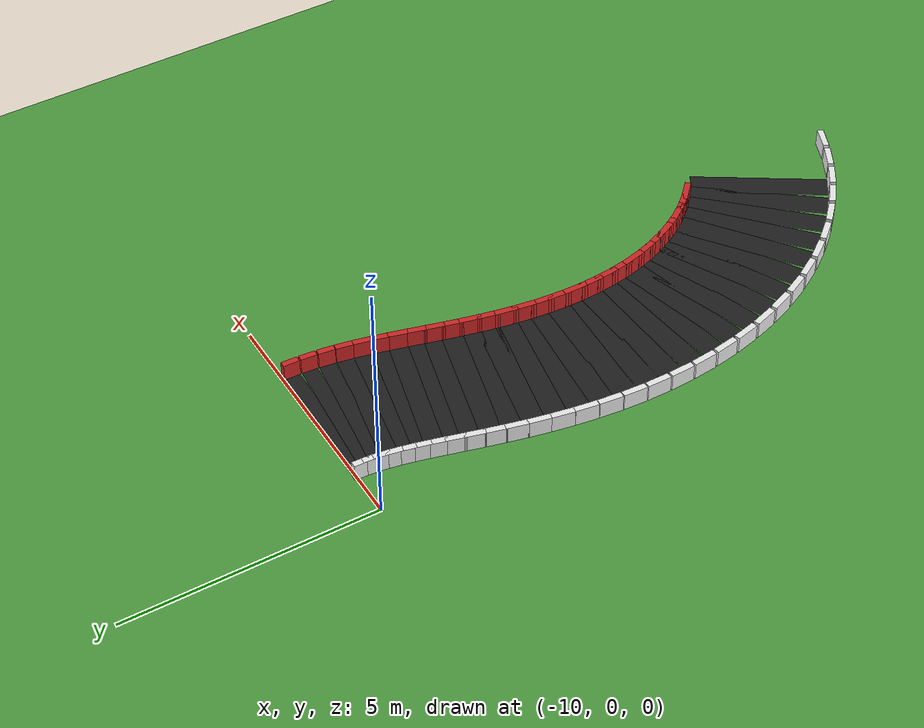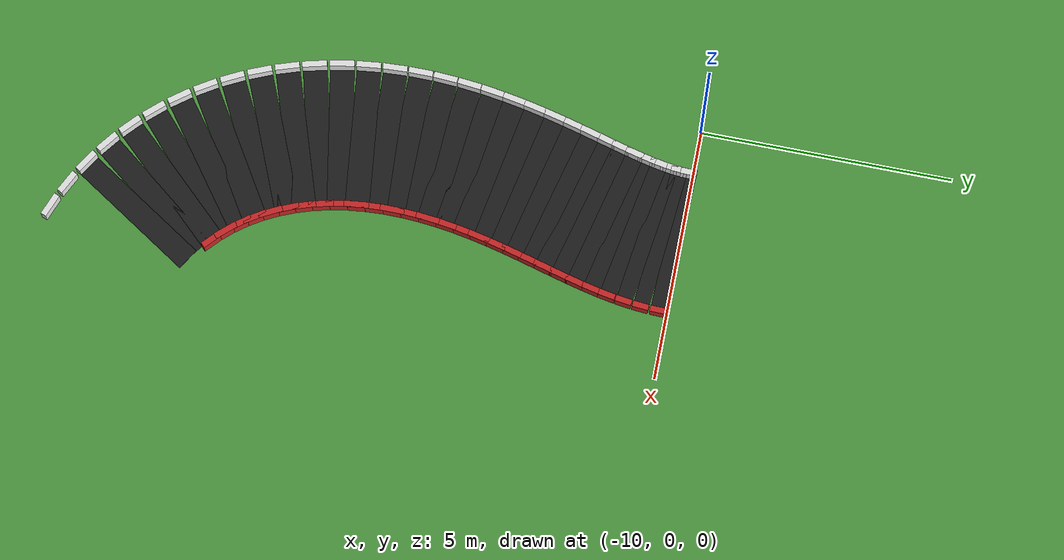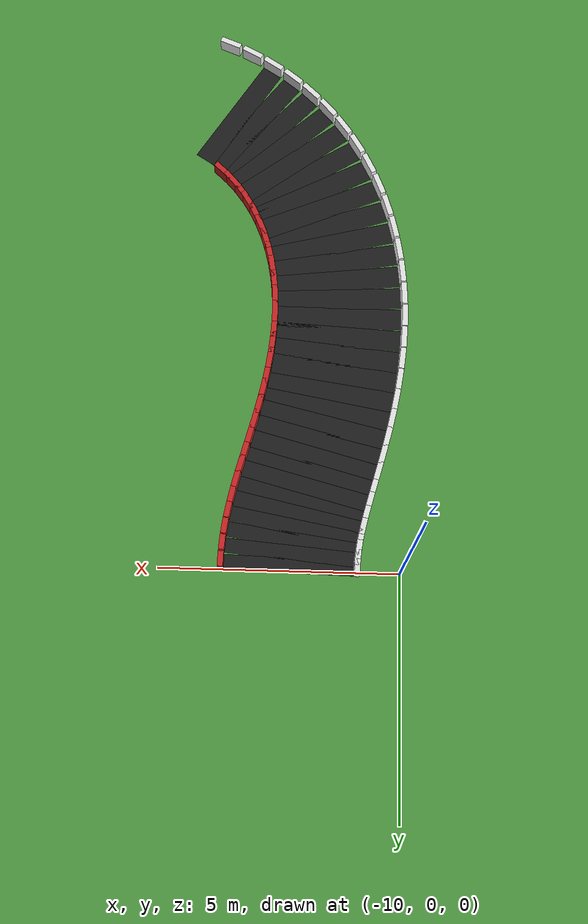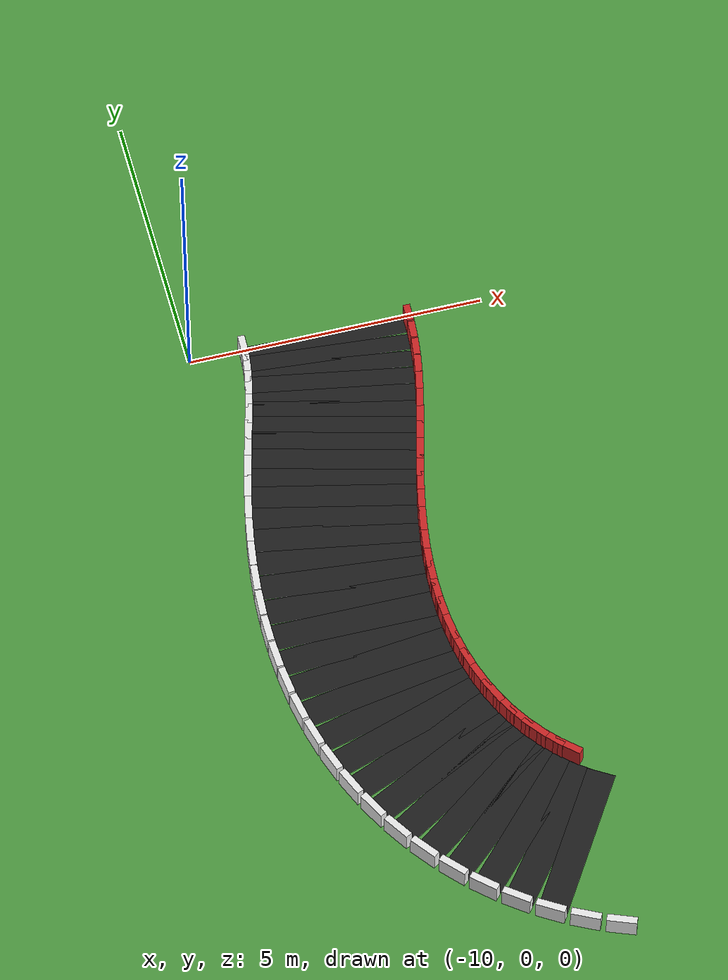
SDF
<sdf version="1.7">
 <world name="rl_track">
  <include><uri>model://sun</uri></include>
  <model name="ground">
   <static>true</static>
   <link name="link">
    <collision name="collision">
     <geometry><plane><normal>0 0 1</normal><size>40 40</size></plane></geometry>
    </collision>
    <visual name="visual">
     <geometry><plane><normal>0 0 1</normal><size>40 40</size></plane></geometry>
     <material>
      <script><uri>file://media/materials/scripts/gazebo.material</uri><name>Gazebo/Grass</name></script>
     </material>
    </visual>
   </link>
  </model>
  <model name="track">
   <static>true</static>
   <link name="road_090">
    <pose>-7.703951 -0.134583 0.003000 0 0 -1.600142788</pose>
    <visual name="visual">
     <geometry><box><size>0.309282 2.700000 0.006000</size></box></geometry>
     <material>
      <script><uri>file://media/materials/scripts/gazebo.material</uri><name>Gazebo/Black</name></script>
     </material>
    </visual>
   </link>
   <link name="inner_wall_090">
    <pose>-9.113344 -0.093210 0.175000 0 0 -1.600142788</pose>
    <collision name="collision">
     <geometry><box><size>0.319282 0.120000 0.350000</size></box></geometry>
     <surface><contact><ode><kp>1000000</kp><kd>10</kd></ode></contact></surface>
    </collision>
    <visual name="visual">
     <geometry><box><size>0.319282 0.120000 0.350000</size></box></geometry>
     <material>
      <script><uri>file://media/materials/scripts/gazebo.material</uri><name>Gazebo/White</name></script>
     </material>
    </visual>
   </link>
   <link name="outer_wall_090">
    <pose>-6.294558 -0.175955 0.175000 0 0 -1.600142788</pose>
    <collision name="collision">
     <geometry><box><size>0.319282 0.120000 0.350000</size></box></geometry>
     <surface><contact><ode><kp>1000000</kp><kd>10</kd></ode></contact></surface>
    </collision>
    <visual name="visual">
     <geometry><box><size>0.319282 0.120000 0.350000</size></box></geometry>
     <material>
      <script><uri>file://media/materials/scripts/gazebo.material</uri><name>Gazebo/Red</name></script>
     </material>
    </visual>
   </link>
   <link name="road_091">
    <pose>-7.719641 -0.404898 0.003000 0 0 -1.657075034</pose>
    <visual name="visual">
     <geometry><box><size>0.312479 2.700000 0.006000</size></box></geometry>
     <material>
      <script><uri>file://media/materials/scripts/gazebo.material</uri><name>Gazebo/Black</name></script>
     </material>
    </visual>
   </link>
   <link name="inner_wall_091">
    <pose>-9.124397 -0.283396 0.175000 0 0 -1.657075034</pose>
    <collision name="collision">
     <geometry><box><size>0.322479 0.120000 0.350000</size></box></geometry>
     <surface><contact><ode><kp>1000000</kp><kd>10</kd></ode></contact></surface>
    </collision>
    <visual name="visual">
     <geometry><box><size>0.322479 0.120000 0.350000</size></box></geometry>
     <material>
      <script><uri>file://media/materials/scripts/gazebo.material</uri><name>Gazebo/White</name></script>
     </material>
    </visual>
   </link>
   <link name="outer_wall_091">
    <pose>-6.314886 -0.526400 0.175000 0 0 -1.657075034</pose>
    <collision name="collision">
     <geometry><box><size>0.322479 0.120000 0.350000</size></box></geometry>
     <surface><contact><ode><kp>1000000</kp><kd>10</kd></ode></contact></surface>
    </collision>
    <visual name="visual">
     <geometry><box><size>0.322479 0.120000 0.350000</size></box></geometry>
     <material>
      <script><uri>file://media/materials/scripts/gazebo.material</uri><name>Gazebo/Red</name></script>
     </material>
    </visual>
   </link>
   <link name="road_092">
    <pose>-7.750577 -0.678633 0.003000 0 0 -1.709003613</pose>
    <visual name="visual">
     <geometry><box><size>0.318662 2.700000 0.006000</size></box></geometry>
     <material>
      <script><uri>file://media/materials/scripts/gazebo.material</uri><name>Gazebo/Black</name></script>
     </material>
    </visual>
   </link>
   <link name="inner_wall_092">
    <pose>-9.147132 -0.484381 0.175000 0 0 -1.709003613</pose>
    <collision name="collision">
     <geometry><box><size>0.328662 0.120000 0.350000</size></box></geometry>
     <surface><contact><ode><kp>1000000</kp><kd>10</kd></ode></contact></surface>
    </collision>
    <visual name="visual">
     <geometry><box><size>0.328662 0.120000 0.350000</size></box></geometry>
     <material>
      <script><uri>file://media/materials/scripts/gazebo.material</uri><name>Gazebo/White</name></script>
     </material>
    </visual>
   </link>
   <link name="outer_wall_092">
    <pose>-6.354022 -0.872886 0.175000 0 0 -1.709003613</pose>
    <collision name="collision">
     <geometry><box><size>0.328662 0.120000 0.350000</size></box></geometry>
     <surface><contact><ode><kp>1000000</kp><kd>10</kd></ode></contact></surface>
    </collision>
    <visual name="visual">
     <geometry><box><size>0.328662 0.120000 0.350000</size></box></geometry>
     <material>
      <script><uri>file://media/materials/scripts/gazebo.material</uri><name>Gazebo/Red</name></script>
     </material>
    </visual>
   </link>
   <link name="road_093">
    <pose>-7.795873 -0.957971 0.003000 0 0 -1.753414670</pose>
    <visual name="visual">
     <geometry><box><size>0.327451 2.700000 0.006000</size></box></geometry>
     <material>
      <script><uri>file://media/materials/scripts/gazebo.material</uri><name>Gazebo/Black</name></script>
     </material>
    </visual>
   </link>
   <link name="inner_wall_093">
    <pose>-9.182427 -0.701908 0.175000 0 0 -1.753414670</pose>
    <collision name="collision">
     <geometry><box><size>0.337451 0.120000 0.350000</size></box></geometry>
     <surface><contact><ode><kp>1000000</kp><kd>10</kd></ode></contact></surface>
    </collision>
    <visual name="visual">
     <geometry><box><size>0.337451 0.120000 0.350000</size></box></geometry>
     <material>
      <script><uri>file://media/materials/scripts/gazebo.material</uri><name>Gazebo/White</name></script>
     </material>
    </visual>
   </link>
   <link name="outer_wall_093">
    <pose>-6.409319 -1.214034 0.175000 0 0 -1.753414670</pose>
    <collision name="collision">
     <geometry><box><size>0.337451 0.120000 0.350000</size></box></geometry>
     <surface><contact><ode><kp>1000000</kp><kd>10</kd></ode></contact></surface>
    </collision>
    <visual name="visual">
     <geometry><box><size>0.337451 0.120000 0.350000</size></box></geometry>
     <material>
      <script><uri>file://media/materials/scripts/gazebo.material</uri><name>Gazebo/Red</name></script>
     </material>
    </visual>
   </link>
   <link name="road_094">
    <pose>-7.854227 -1.244953 0.003000 0 0 -1.788725289</pose>
    <visual name="visual">
     <geometry><box><size>0.338349 2.700000 0.006000</size></box></geometry>
     <material>
      <script><uri>file://media/materials/scripts/gazebo.material</uri><name>Gazebo/Black</name></script>
     </material>
    </visual>
   </link>
   <link name="inner_wall_094">
    <pose>-9.230877 -0.940100 0.175000 0 0 -1.788725289</pose>
    <collision name="collision">
     <geometry><box><size>0.348349 0.120000 0.350000</size></box></geometry>
     <surface><contact><ode><kp>1000000</kp><kd>10</kd></ode></contact></surface>
    </collision>
    <visual name="visual">
     <geometry><box><size>0.348349 0.120000 0.350000</size></box></geometry>
     <material>
      <script><uri>file://media/materials/scripts/gazebo.material</uri><name>Gazebo/White</name></script>
     </material>
    </visual>
   </link>
   <link name="outer_wall_094">
    <pose>-6.477577 -1.549806 0.175000 0 0 -1.788725289</pose>
    <collision name="collision">
     <geometry><box><size>0.348349 0.120000 0.350000</size></box></geometry>
     <surface><contact><ode><kp>1000000</kp><kd>10</kd></ode></contact></surface>
    </collision>
    <visual name="visual">
     <geometry><box><size>0.348349 0.120000 0.350000</size></box></geometry>
     <material>
      <script><uri>file://media/materials/scripts/gazebo.material</uri><name>Gazebo/Red</name></script>
     </material>
    </visual>
   </link>
   <link name="road_095">
    <pose>-7.923939 -1.541423 0.003000 0 0 -1.814234779</pose>
    <visual name="visual">
     <geometry><box><size>0.350813 2.700000 0.006000</size></box></geometry>
     <material>
      <script><uri>file://media/materials/scripts/gazebo.material</uri><name>Gazebo/Black</name></script>
     </material>
    </visual>
   </link>
   <link name="inner_wall_095">
    <pose>-9.292365 -1.201555 0.175000 0 0 -1.814234779</pose>
    <collision name="collision">
     <geometry><box><size>0.360813 0.120000 0.350000</size></box></geometry>
     <surface><contact><ode><kp>1000000</kp><kd>10</kd></ode></contact></surface>
    </collision>
    <visual name="visual">
     <geometry><box><size>0.360813 0.120000 0.350000</size></box></geometry>
     <material>
      <script><uri>file://media/materials/scripts/gazebo.material</uri><name>Gazebo/White</name></script>
     </material>
    </visual>
   </link>
   <link name="outer_wall_095">
    <pose>-6.555513 -1.881291 0.175000 0 0 -1.814234779</pose>
    <collision name="collision">
     <geometry><box><size>0.360813 0.120000 0.350000</size></box></geometry>
     <surface><contact><ode><kp>1000000</kp><kd>10</kd></ode></contact></surface>
    </collision>
    <visual name="visual">
     <geometry><box><size>0.360813 0.120000 0.350000</size></box></geometry>
     <material>
      <script><uri>file://media/materials/scripts/gazebo.material</uri><name>Gazebo/Red</name></script>
     </material>
    </visual>
   </link>
   <link name="road_096">
    <pose>-8.002947 -1.848983 0.003000 0 0 -1.829923918</pose>
    <visual name="visual">
     <geometry><box><size>0.364298 2.700000 0.006000</size></box></geometry>
     <material>
      <script><uri>file://media/materials/scripts/gazebo.material</uri><name>Gazebo/Black</name></script>
     </material>
    </visual>
   </link>
   <link name="inner_wall_096">
    <pose>-9.365873 -1.487688 0.175000 0 0 -1.829923918</pose>
    <collision name="collision">
     <geometry><box><size>0.374298 0.120000 0.350000</size></box></geometry>
     <surface><contact><ode><kp>1000000</kp><kd>10</kd></ode></contact></surface>
    </collision>
    <visual name="visual">
     <geometry><box><size>0.374298 0.120000 0.350000</size></box></geometry>
     <material>
      <script><uri>file://media/materials/scripts/gazebo.material</uri><name>Gazebo/White</name></script>
     </material>
    </visual>
   </link>
   <link name="outer_wall_096">
    <pose>-6.640022 -2.210277 0.175000 0 0 -1.829923918</pose>
    <collision name="collision">
     <geometry><box><size>0.374298 0.120000 0.350000</size></box></geometry>
     <surface><contact><ode><kp>1000000</kp><kd>10</kd></ode></contact></surface>
    </collision>
    <visual name="visual">
     <geometry><box><size>0.374298 0.120000 0.350000</size></box></geometry>
     <material>
      <script><uri>file://media/materials/scripts/gazebo.material</uri><name>Gazebo/Red</name></script>
     </material>
    </visual>
   </link>
   <link name="road_097">
    <pose>-8.088865 -2.168943 0.003000 0 0 -1.836214078</pose>
    <visual name="visual">
     <geometry><box><size>0.378296 2.700000 0.006000</size></box></geometry>
     <material>
      <script><uri>file://media/materials/scripts/gazebo.material</uri><name>Gazebo/Black</name></script>
     </material>
    </visual>
   </link>
   <link name="inner_wall_097">
    <pose>-9.449491 -1.799082 0.175000 0 0 -1.836214078</pose>
    <collision name="collision">
     <geometry><box><size>0.388296 0.120000 0.350000</size></box></geometry>
     <surface><contact><ode><kp>1000000</kp><kd>10</kd></ode></contact></surface>
    </collision>
    <visual name="visual">
     <geometry><box><size>0.388296 0.120000 0.350000</size></box></geometry>
     <material>
      <script><uri>file://media/materials/scripts/gazebo.material</uri><name>Gazebo/White</name></script>
     </material>
    </visual>
   </link>
   <link name="outer_wall_097">
    <pose>-6.728239 -2.538803 0.175000 0 0 -1.836214078</pose>
    <collision name="collision">
     <geometry><box><size>0.388296 0.120000 0.350000</size></box></geometry>
     <surface><contact><ode><kp>1000000</kp><kd>10</kd></ode></contact></surface>
    </collision>
    <visual name="visual">
     <geometry><box><size>0.388296 0.120000 0.350000</size></box></geometry>
     <material>
      <script><uri>file://media/materials/scripts/gazebo.material</uri><name>Gazebo/Red</name></script>
     </material>
    </visual>
   </link>
   <link name="road_098">
    <pose>-8.179030 -2.502288 0.003000 0 0 -1.833758318</pose>
    <visual name="visual">
     <geometry><box><size>0.392353 2.700000 0.006000</size></box></geometry>
     <material>
      <script><uri>file://media/materials/scripts/gazebo.material</uri><name>Gazebo/Black</name></script>
     </material>
    </visual>
   </link>
   <link name="inner_wall_098">
    <pose>-9.540561 -2.135770 0.175000 0 0 -1.833758318</pose>
    <collision name="collision">
     <geometry><box><size>0.402353 0.120000 0.350000</size></box></geometry>
     <surface><contact><ode><kp>1000000</kp><kd>10</kd></ode></contact></surface>
    </collision>
    <visual name="visual">
     <geometry><box><size>0.402353 0.120000 0.350000</size></box></geometry>
     <material>
      <script><uri>file://media/materials/scripts/gazebo.material</uri><name>Gazebo/White</name></script>
     </material>
    </visual>
   </link>
   <link name="outer_wall_098">
    <pose>-6.817500 -2.868806 0.175000 0 0 -1.833758318</pose>
    <collision name="collision">
     <geometry><box><size>0.402353 0.120000 0.350000</size></box></geometry>
     <surface><contact><ode><kp>1000000</kp><kd>10</kd></ode></contact></surface>
    </collision>
    <visual name="visual">
     <geometry><box><size>0.402353 0.120000 0.350000</size></box></geometry>
     <material>
      <script><uri>file://media/materials/scripts/gazebo.material</uri><name>Gazebo/Red</name></script>
     </material>
    </visual>
   </link>
   <link name="road_099">
    <pose>-8.270553 -2.849643 0.003000 0 0 -1.823290871</pose>
    <visual name="visual">
     <geometry><box><size>0.406078 2.700000 0.006000</size></box></geometry>
     <material>
      <script><uri>file://media/materials/scripts/gazebo.material</uri><name>Gazebo/Black</name></script>
     </material>
    </visual>
   </link>
   <link name="inner_wall_099">
    <pose>-9.635845 -2.497397 0.175000 0 0 -1.823290871</pose>
    <collision name="collision">
     <geometry><box><size>0.416078 0.120000 0.350000</size></box></geometry>
     <surface><contact><ode><kp>1000000</kp><kd>10</kd></ode></contact></surface>
    </collision>
    <visual name="visual">
     <geometry><box><size>0.416078 0.120000 0.350000</size></box></geometry>
     <material>
      <script><uri>file://media/materials/scripts/gazebo.material</uri><name>Gazebo/White</name></script>
     </material>
    </visual>
   </link>
   <link name="outer_wall_099">
    <pose>-6.905261 -3.201890 0.175000 0 0 -1.823290871</pose>
    <collision name="collision">
     <geometry><box><size>0.416078 0.120000 0.350000</size></box></geometry>
     <surface><contact><ode><kp>1000000</kp><kd>10</kd></ode></contact></surface>
    </collision>
    <visual name="visual">
     <geometry><box><size>0.416078 0.120000 0.350000</size></box></geometry>
     <material>
      <script><uri>file://media/materials/scripts/gazebo.material</uri><name>Gazebo/Red</name></script>
     </material>
    </visual>
   </link>
   <link name="road_100">
    <pose>-8.360372 -3.211251 0.003000 0 0 -1.805532859</pose>
    <visual name="visual">
     <geometry><box><size>0.419143 2.700000 0.006000</size></box></geometry>
     <material>
      <script><uri>file://media/materials/scripts/gazebo.material</uri><name>Gazebo/Black</name></script>
     </material>
    </visual>
   </link>
   <link name="inner_wall_100">
    <pose>-9.731703 -2.883304 0.175000 0 0 -1.805532859</pose>
    <collision name="collision">
     <geometry><box><size>0.429143 0.120000 0.350000</size></box></geometry>
     <surface><contact><ode><kp>1000000</kp><kd>10</kd></ode></contact></surface>
    </collision>
    <visual name="visual">
     <geometry><box><size>0.429143 0.120000 0.350000</size></box></geometry>
     <material>
      <script><uri>file://media/materials/scripts/gazebo.material</uri><name>Gazebo/White</name></script>
     </material>
    </visual>
   </link>
   <link name="outer_wall_100">
    <pose>-6.989040 -3.539198 0.175000 0 0 -1.805532859</pose>
    <collision name="collision">
     <geometry><box><size>0.429143 0.120000 0.350000</size></box></geometry>
     <surface><contact><ode><kp>1000000</kp><kd>10</kd></ode></contact></surface>
    </collision>
    <visual name="visual">
     <geometry><box><size>0.429143 0.120000 0.350000</size></box></geometry>
     <material>
      <script><uri>file://media/materials/scripts/gazebo.material</uri><name>Gazebo/Red</name></script>
     </material>
    </visual>
   </link>
   <link name="road_101">
    <pose>-8.445313 -3.586953 0.003000 0 0 -1.781140870</pose>
    <visual name="visual">
     <geometry><box><size>0.431283 2.700000 0.006000</size></box></geometry>
     <material>
      <script><uri>file://media/materials/scripts/gazebo.material</uri><name>Gazebo/Black</name></script>
     </material>
    </visual>
   </link>
   <link name="inner_wall_101">
    <pose>-9.824235 -3.292550 0.175000 0 0 -1.781140870</pose>
    <collision name="collision">
     <geometry><box><size>0.441283 0.120000 0.350000</size></box></geometry>
     <surface><contact><ode><kp>1000000</kp><kd>10</kd></ode></contact></surface>
    </collision>
    <visual name="visual">
     <geometry><box><size>0.441283 0.120000 0.350000</size></box></geometry>
     <material>
      <script><uri>file://media/materials/scripts/gazebo.material</uri><name>Gazebo/White</name></script>
     </material>
    </visual>
   </link>
   <link name="outer_wall_101">
    <pose>-7.066390 -3.881357 0.175000 0 0 -1.781140870</pose>
    <collision name="collision">
     <geometry><box><size>0.441283 0.120000 0.350000</size></box></geometry>
     <surface><contact><ode><kp>1000000</kp><kd>10</kd></ode></contact></surface>
    </collision>
    <visual name="visual">
     <geometry><box><size>0.441283 0.120000 0.350000</size></box></geometry>
     <material>
      <script><uri>file://media/materials/scripts/gazebo.material</uri><name>Gazebo/Red</name></script>
     </material>
    </visual>
   </link>
   <link name="road_102">
    <pose>-8.522151 -3.976183 0.003000 0 0 -1.750684128</pose>
    <visual name="visual">
     <geometry><box><size>0.442292 2.700000 0.006000</size></box></geometry>
     <material>
      <script><uri>file://media/materials/scripts/gazebo.material</uri><name>Gazebo/Black</name></script>
     </material>
    </visual>
   </link>
   <link name="inner_wall_102">
    <pose>-9.909399 -3.723907 0.175000 0 0 -1.750684128</pose>
    <collision name="collision">
     <geometry><box><size>0.452292 0.120000 0.350000</size></box></geometry>
     <surface><contact><ode><kp>1000000</kp><kd>10</kd></ode></contact></surface>
    </collision>
    <visual name="visual">
     <geometry><box><size>0.452292 0.120000 0.350000</size></box></geometry>
     <material>
      <script><uri>file://media/materials/scripts/gazebo.material</uri><name>Gazebo/White</name></script>
     </material>
    </visual>
   </link>
   <link name="outer_wall_102">
    <pose>-7.134903 -4.228459 0.175000 0 0 -1.750684128</pose>
    <collision name="collision">
     <geometry><box><size>0.452292 0.120000 0.350000</size></box></geometry>
     <surface><contact><ode><kp>1000000</kp><kd>10</kd></ode></contact></surface>
    </collision>
    <visual name="visual">
     <geometry><box><size>0.452292 0.120000 0.350000</size></box></geometry>
     <material>
      <script><uri>file://media/materials/scripts/gazebo.material</uri><name>Gazebo/Red</name></script>
     </material>
    </visual>
   </link>
   <link name="road_103">
    <pose>-8.587671 -4.377966 0.003000 0 0 -1.714639013</pose>
    <visual name="visual">
     <geometry><box><size>0.452019 2.700000 0.006000</size></box></geometry>
     <material>
      <script><uri>file://media/materials/scripts/gazebo.material</uri><name>Gazebo/Black</name></script>
     </material>
    </visual>
   </link>
   <link name="inner_wall_103">
    <pose>-9.983109 -4.175846 0.175000 0 0 -1.714639013</pose>
    <collision name="collision">
     <geometry><box><size>0.462019 0.120000 0.350000</size></box></geometry>
     <surface><contact><ode><kp>1000000</kp><kd>10</kd></ode></contact></surface>
    </collision>
    <visual name="visual">
     <geometry><box><size>0.462019 0.120000 0.350000</size></box></geometry>
     <material>
      <script><uri>file://media/materials/scripts/gazebo.material</uri><name>Gazebo/White</name></script>
     </material>
    </visual>
   </link>
   <link name="outer_wall_103">
    <pose>-7.192233 -4.580085 0.175000 0 0 -1.714639013</pose>
    <collision name="collision">
     <geometry><box><size>0.462019 0.120000 0.350000</size></box></geometry>
     <surface><contact><ode><kp>1000000</kp><kd>10</kd></ode></contact></surface>
    </collision>
    <visual name="visual">
     <geometry><box><size>0.462019 0.120000 0.350000</size></box></geometry>
     <material>
      <script><uri>file://media/materials/scripts/gazebo.material</uri><name>Gazebo/Red</name></script>
     </material>
    </visual>
   </link>
   <link name="road_104">
    <pose>-8.638728 -4.790924 0.003000 0 0 -1.673393325</pose>
    <visual name="visual">
     <geometry><box><size>0.460363 2.700000 0.006000</size></box></geometry>
     <material>
      <script><uri>file://media/materials/scripts/gazebo.material</uri><name>Gazebo/Black</name></script>
     </material>
    </visual>
   </link>
   <link name="inner_wall_104">
    <pose>-10.041313 -4.646516 0.175000 0 0 -1.673393325</pose>
    <collision name="collision">
     <geometry><box><size>0.470363 0.120000 0.350000</size></box></geometry>
     <surface><contact><ode><kp>1000000</kp><kd>10</kd></ode></contact></surface>
    </collision>
    <visual name="visual">
     <geometry><box><size>0.470363 0.120000 0.350000</size></box></geometry>
     <material>
      <script><uri>file://media/materials/scripts/gazebo.material</uri><name>Gazebo/White</name></script>
     </material>
    </visual>
   </link>
   <link name="outer_wall_104">
    <pose>-7.236142 -4.935332 0.175000 0 0 -1.673393325</pose>
    <collision name="collision">
     <geometry><box><size>0.470363 0.120000 0.350000</size></box></geometry>
     <surface><contact><ode><kp>1000000</kp><kd>10</kd></ode></contact></surface>
    </collision>
    <visual name="visual">
     <geometry><box><size>0.470363 0.120000 0.350000</size></box></geometry>
     <material>
      <script><uri>file://media/materials/scripts/gazebo.material</uri><name>Gazebo/Red</name></script>
     </material>
    </visual>
   </link>
   <link name="road_105">
    <pose>-8.672309 -5.213297 0.003000 0 0 -1.627255652</pose>
    <visual name="visual">
     <geometry><box><size>0.467274 2.700000 0.006000</size></box></geometry>
     <material>
      <script><uri>file://media/materials/scripts/gazebo.material</uri><name>Gazebo/Black</name></script>
     </material>
    </visual>
   </link>
   <link name="inner_wall_105">
    <pose>-10.080063 -5.133731 0.175000 0 0 -1.627255652</pose>
    <collision name="collision">
     <geometry><box><size>0.477274 0.120000 0.350000</size></box></geometry>
     <surface><contact><ode><kp>1000000</kp><kd>10</kd></ode></contact></surface>
    </collision>
    <visual name="visual">
     <geometry><box><size>0.477274 0.120000 0.350000</size></box></geometry>
     <material>
      <script><uri>file://media/materials/scripts/gazebo.material</uri><name>Gazebo/White</name></script>
     </material>
    </visual>
   </link>
   <link name="outer_wall_105">
    <pose>-7.264556 -5.292862 0.175000 0 0 -1.627255652</pose>
    <collision name="collision">
     <geometry><box><size>0.477274 0.120000 0.350000</size></box></geometry>
     <surface><contact><ode><kp>1000000</kp><kd>10</kd></ode></contact></surface>
    </collision>
    <visual name="visual">
     <geometry><box><size>0.477274 0.120000 0.350000</size></box></geometry>
     <material>
      <script><uri>file://media/materials/scripts/gazebo.material</uri><name>Gazebo/Red</name></script>
     </material>
    </visual>
   </link>
   <link name="road_106">
    <pose>-8.685592 -5.642963 0.003000 0 0 -1.576467280</pose>
    <visual name="visual">
     <geometry><box><size>0.472747 2.700000 0.006000</size></box></geometry>
     <material>
      <script><uri>file://media/materials/scripts/gazebo.material</uri><name>Gazebo/Black</name></script>
     </material>
    </visual>
   </link>
   <link name="inner_wall_106">
    <pose>-10.095569 -5.634967 0.175000 0 0 -1.576467280</pose>
    <collision name="collision">
     <geometry><box><size>0.482747 0.120000 0.350000</size></box></geometry>
     <surface><contact><ode><kp>1000000</kp><kd>10</kd></ode></contact></surface>
    </collision>
    <visual name="visual">
     <geometry><box><size>0.482747 0.120000 0.350000</size></box></geometry>
     <material>
      <script><uri>file://media/materials/scripts/gazebo.material</uri><name>Gazebo/White</name></script>
     </material>
    </visual>
   </link>
   <link name="outer_wall_106">
    <pose>-7.275615 -5.650959 0.175000 0 0 -1.576467280</pose>
    <collision name="collision">
     <geometry><box><size>0.482747 0.120000 0.350000</size></box></geometry>
     <surface><contact><ode><kp>1000000</kp><kd>10</kd></ode></contact></surface>
    </collision>
    <visual name="visual">
     <geometry><box><size>0.482747 0.120000 0.350000</size></box></geometry>
     <material>
      <script><uri>file://media/materials/scripts/gazebo.material</uri><name>Gazebo/Red</name></script>
     </material>
    </visual>
   </link>
   <link name="road_107">
    <pose>-8.675994 -6.077474 0.003000 0 0 -1.521215390</pose>
    <visual name="visual">
     <geometry><box><size>0.476818 2.700000 0.006000</size></box></geometry>
     <material>
      <script><uri>file://media/materials/scripts/gazebo.material</uri><name>Gazebo/Black</name></script>
     </material>
    </visual>
   </link>
   <link name="inner_wall_107">
    <pose>-10.084262 -6.147354 0.175000 0 0 -1.521215390</pose>
    <collision name="collision">
     <geometry><box><size>0.486818 0.120000 0.350000</size></box></geometry>
     <surface><contact><ode><kp>1000000</kp><kd>10</kd></ode></contact></surface>
    </collision>
    <visual name="visual">
     <geometry><box><size>0.486818 0.120000 0.350000</size></box></geometry>
     <material>
      <script><uri>file://media/materials/scripts/gazebo.material</uri><name>Gazebo/White</name></script>
     </material>
    </visual>
   </link>
   <link name="outer_wall_107">
    <pose>-7.267727 -6.007593 0.175000 0 0 -1.521215390</pose>
    <collision name="collision">
     <geometry><box><size>0.486818 0.120000 0.350000</size></box></geometry>
     <surface><contact><ode><kp>1000000</kp><kd>10</kd></ode></contact></surface>
    </collision>
    <visual name="visual">
     <geometry><box><size>0.486818 0.120000 0.350000</size></box></geometry>
     <material>
      <script><uri>file://media/materials/scripts/gazebo.material</uri><name>Gazebo/Red</name></script>
     </material>
    </visual>
   </link>
   <link name="road_108">
    <pose>-8.641229 -6.514089 0.003000 0 0 -1.461647078</pose>
    <visual name="visual">
     <geometry><box><size>0.479564 2.700000 0.006000</size></box></geometry>
     <material>
      <script><uri>file://media/materials/scripts/gazebo.material</uri><name>Gazebo/Black</name></script>
     </material>
    </visual>
   </link>
   <link name="inner_wall_108">
    <pose>-10.042838 -6.667684 0.175000 0 0 -1.461647078</pose>
    <collision name="collision">
     <geometry><box><size>0.489564 0.120000 0.350000</size></box></geometry>
     <surface><contact><ode><kp>1000000</kp><kd>10</kd></ode></contact></surface>
    </collision>
    <visual name="visual">
     <geometry><box><size>0.489564 0.120000 0.350000</size></box></geometry>
     <material>
      <script><uri>file://media/materials/scripts/gazebo.material</uri><name>Gazebo/White</name></script>
     </material>
    </visual>
   </link>
   <link name="outer_wall_108">
    <pose>-7.239619 -6.360493 0.175000 0 0 -1.461647078</pose>
    <collision name="collision">
     <geometry><box><size>0.489564 0.120000 0.350000</size></box></geometry>
     <surface><contact><ode><kp>1000000</kp><kd>10</kd></ode></contact></surface>
    </collision>
    <visual name="visual">
     <geometry><box><size>0.489564 0.120000 0.350000</size></box></geometry>
     <material>
      <script><uri>file://media/materials/scripts/gazebo.material</uri><name>Gazebo/Red</name></script>
     </material>
    </visual>
   </link>
   <link name="road_109">
    <pose>-8.579341 -6.949822 0.003000 0 0 -1.397884138</pose>
    <visual name="visual">
     <geometry><box><size>0.481097 2.700000 0.006000</size></box></geometry>
     <material>
      <script><uri>file://media/materials/scripts/gazebo.material</uri><name>Gazebo/Black</name></script>
     </material>
    </visual>
   </link>
   <link name="inner_wall_109">
    <pose>-9.968315 -7.192415 0.175000 0 0 -1.397884138</pose>
    <collision name="collision">
     <geometry><box><size>0.491097 0.120000 0.350000</size></box></geometry>
     <surface><contact><ode><kp>1000000</kp><kd>10</kd></ode></contact></surface>
    </collision>
    <visual name="visual">
     <geometry><box><size>0.491097 0.120000 0.350000</size></box></geometry>
     <material>
      <script><uri>file://media/materials/scripts/gazebo.material</uri><name>Gazebo/White</name></script>
     </material>
    </visual>
   </link>
   <link name="outer_wall_109">
    <pose>-7.190367 -6.707229 0.175000 0 0 -1.397884138</pose>
    <collision name="collision">
     <geometry><box><size>0.491097 0.120000 0.350000</size></box></geometry>
     <surface><contact><ode><kp>1000000</kp><kd>10</kd></ode></contact></surface>
    </collision>
    <visual name="visual">
     <geometry><box><size>0.491097 0.120000 0.350000</size></box></geometry>
     <material>
      <script><uri>file://media/materials/scripts/gazebo.material</uri><name>Gazebo/Red</name></script>
     </material>
    </visual>
   </link>
   <link name="road_110">
    <pose>-8.488753 -7.381495 0.003000 0 0 -1.330038711</pose>
    <visual name="visual">
     <geometry><box><size>0.481562 2.700000 0.006000</size></box></geometry>
     <material>
      <script><uri>file://media/materials/scripts/gazebo.material</uri><name>Gazebo/Black</name></script>
     </material>
    </visual>
   </link>
   <link name="inner_wall_110">
    <pose>-9.858085 -7.717693 0.175000 0 0 -1.330038711</pose>
    <collision name="collision">
     <geometry><box><size>0.491562 0.120000 0.350000</size></box></geometry>
     <surface><contact><ode><kp>1000000</kp><kd>10</kd></ode></contact></surface>
    </collision>
    <visual name="visual">
     <geometry><box><size>0.491562 0.120000 0.350000</size></box></geometry>
     <material>
      <script><uri>file://media/materials/scripts/gazebo.material</uri><name>Gazebo/White</name></script>
     </material>
    </visual>
   </link>
   <link name="outer_wall_110">
    <pose>-7.119421 -7.045297 0.175000 0 0 -1.330038711</pose>
    <collision name="collision">
     <geometry><box><size>0.491562 0.120000 0.350000</size></box></geometry>
     <surface><contact><ode><kp>1000000</kp><kd>10</kd></ode></contact></surface>
    </collision>
    <visual name="visual">
     <geometry><box><size>0.491562 0.120000 0.350000</size></box></geometry>
     <material>
      <script><uri>file://media/materials/scripts/gazebo.material</uri><name>Gazebo/Red</name></script>
     </material>
    </visual>
   </link>
   <link name="road_111">
    <pose>-8.368286 -7.805786 0.003000 0 0 -1.258229837</pose>
    <visual name="visual">
     <geometry><box><size>0.481129 2.700000 0.006000</size></box></geometry>
     <material>
      <script><uri>file://media/materials/scripts/gazebo.material</uri><name>Gazebo/Black</name></script>
     </material>
    </visual>
   </link>
   <link name="inner_wall_111">
    <pose>-9.709968 -8.239363 0.175000 0 0 -1.258229837</pose>
    <collision name="collision">
     <geometry><box><size>0.491129 0.120000 0.350000</size></box></geometry>
     <surface><contact><ode><kp>1000000</kp><kd>10</kd></ode></contact></surface>
    </collision>
    <visual name="visual">
     <geometry><box><size>0.491129 0.120000 0.350000</size></box></geometry>
     <material>
      <script><uri>file://media/materials/scripts/gazebo.material</uri><name>Gazebo/White</name></script>
     </material>
    </visual>
   </link>
   <link name="outer_wall_111">
    <pose>-7.026604 -7.372208 0.175000 0 0 -1.258229837</pose>
    <collision name="collision">
     <geometry><box><size>0.491129 0.120000 0.350000</size></box></geometry>
     <surface><contact><ode><kp>1000000</kp><kd>10</kd></ode></contact></surface>
    </collision>
    <visual name="visual">
     <geometry><box><size>0.491129 0.120000 0.350000</size></box></geometry>
     <material>
      <script><uri>file://media/materials/scripts/gazebo.material</uri><name>Gazebo/Red</name></script>
     </material>
    </visual>
   </link>
   <link name="road_112">
    <pose>-8.217190 -8.219290 0.003000 0 0 -1.182600729</pose>
    <visual name="visual">
     <geometry><box><size>0.479992 2.700000 0.006000</size></box></geometry>
     <material>
      <script><uri>file://media/materials/scripts/gazebo.material</uri><name>Gazebo/Black</name></script>
     </material>
    </visual>
   </link>
   <link name="inner_wall_112">
    <pose>-9.522276 -8.753002 0.175000 0 0 -1.182600729</pose>
    <collision name="collision">
     <geometry><box><size>0.489992 0.120000 0.350000</size></box></geometry>
     <surface><contact><ode><kp>1000000</kp><kd>10</kd></ode></contact></surface>
    </collision>
    <visual name="visual">
     <geometry><box><size>0.489992 0.120000 0.350000</size></box></geometry>
     <material>
      <script><uri>file://media/materials/scripts/gazebo.material</uri><name>Gazebo/White</name></script>
     </material>
    </visual>
   </link>
   <link name="outer_wall_112">
    <pose>-6.912103 -7.685579 0.175000 0 0 -1.182600729</pose>
    <collision name="collision">
     <geometry><box><size>0.489992 0.120000 0.350000</size></box></geometry>
     <surface><contact><ode><kp>1000000</kp><kd>10</kd></ode></contact></surface>
    </collision>
    <visual name="visual">
     <geometry><box><size>0.489992 0.120000 0.350000</size></box></geometry>
     <material>
      <script><uri>file://media/materials/scripts/gazebo.material</uri><name>Gazebo/Red</name></script>
     </material>
    </visual>
   </link>
   <link name="road_113">
    <pose>-8.035150 -8.618582 0.003000 0 0 -1.103336205</pose>
    <visual name="visual">
     <geometry><box><size>0.478358 2.700000 0.006000</size></box></geometry>
     <material>
      <script><uri>file://media/materials/scripts/gazebo.material</uri><name>Gazebo/Black</name></script>
     </material>
    </visual>
   </link>
   <link name="inner_wall_113">
    <pose>-9.293879 -9.253957 0.175000 0 0 -1.103336205</pose>
    <collision name="collision">
     <geometry><box><size>0.488358 0.120000 0.350000</size></box></geometry>
     <surface><contact><ode><kp>1000000</kp><kd>10</kd></ode></contact></surface>
    </collision>
    <visual name="visual">
     <geometry><box><size>0.488358 0.120000 0.350000</size></box></geometry>
     <material>
      <script><uri>file://media/materials/scripts/gazebo.material</uri><name>Gazebo/White</name></script>
     </material>
    </visual>
   </link>
   <link name="outer_wall_113">
    <pose>-6.776421 -7.983207 0.175000 0 0 -1.103336205</pose>
    <collision name="collision">
     <geometry><box><size>0.488358 0.120000 0.350000</size></box></geometry>
     <surface><contact><ode><kp>1000000</kp><kd>10</kd></ode></contact></surface>
    </collision>
    <visual name="visual">
     <geometry><box><size>0.488358 0.120000 0.350000</size></box></geometry>
     <material>
      <script><uri>file://media/materials/scripts/gazebo.material</uri><name>Gazebo/Red</name></script>
     </material>
    </visual>
   </link>
   <link name="road_114">
    <pose>-7.822301 -9.000272 0.003000 0 0 -1.020679218</pose>
    <visual name="visual">
     <geometry><box><size>0.476441 2.700000 0.006000</size></box></geometry>
     <material>
      <script><uri>file://media/materials/scripts/gazebo.material</uri><name>Gazebo/Black</name></script>
     </material>
    </visual>
   </link>
   <link name="inner_wall_114">
    <pose>-9.024274 -9.737401 0.175000 0 0 -1.020679218</pose>
    <collision name="collision">
     <geometry><box><size>0.486441 0.120000 0.350000</size></box></geometry>
     <surface><contact><ode><kp>1000000</kp><kd>10</kd></ode></contact></surface>
    </collision>
    <visual name="visual">
     <geometry><box><size>0.486441 0.120000 0.350000</size></box></geometry>
     <material>
      <script><uri>file://media/materials/scripts/gazebo.material</uri><name>Gazebo/White</name></script>
     </material>
    </visual>
   </link>
   <link name="outer_wall_114">
    <pose>-6.620328 -8.263142 0.175000 0 0 -1.020679218</pose>
    <collision name="collision">
     <geometry><box><size>0.486441 0.120000 0.350000</size></box></geometry>
     <surface><contact><ode><kp>1000000</kp><kd>10</kd></ode></contact></surface>
    </collision>
    <visual name="visual">
     <geometry><box><size>0.486441 0.120000 0.350000</size></box></geometry>
     <material>
      <script><uri>file://media/materials/scripts/gazebo.material</uri><name>Gazebo/Red</name></script>
     </material>
    </visual>
   </link>
   <link name="road_115">
    <pose>-7.579216 -9.361068 0.003000 0 0 -0.934944891</pose>
    <visual name="visual">
     <geometry><box><size>0.474449 2.700000 0.006000</size></box></geometry>
     <material>
      <script><uri>file://media/materials/scripts/gazebo.material</uri><name>Gazebo/Black</name></script>
     </material>
    </visual>
   </link>
   <link name="inner_wall_115">
    <pose>-8.713655 -10.198415 0.175000 0 0 -0.934944891</pose>
    <collision name="collision">
     <geometry><box><size>0.484449 0.120000 0.350000</size></box></geometry>
     <surface><contact><ode><kp>1000000</kp><kd>10</kd></ode></contact></surface>
    </collision>
    <visual name="visual">
     <geometry><box><size>0.484449 0.120000 0.350000</size></box></geometry>
     <material>
      <script><uri>file://media/materials/scripts/gazebo.material</uri><name>Gazebo/White</name></script>
     </material>
    </visual>
   </link>
   <link name="outer_wall_115">
    <pose>-6.444778 -8.523722 0.175000 0 0 -0.934944891</pose>
    <collision name="collision">
     <geometry><box><size>0.484449 0.120000 0.350000</size></box></geometry>
     <surface><contact><ode><kp>1000000</kp><kd>10</kd></ode></contact></surface>
    </collision>
    <visual name="visual">
     <geometry><box><size>0.484449 0.120000 0.350000</size></box></geometry>
     <material>
      <script><uri>file://media/materials/scripts/gazebo.material</uri><name>Gazebo/Red</name></script>
     </material>
    </visual>
   </link>
   <link name="road_116">
    <pose>-7.306903 -9.697839 0.003000 0 0 -0.846530072</pose>
    <visual name="visual">
     <geometry><box><size>0.472582 2.700000 0.006000</size></box></geometry>
     <material>
      <script><uri>file://media/materials/scripts/gazebo.material</uri><name>Gazebo/Black</name></script>
     </material>
    </visual>
   </link>
   <link name="inner_wall_116">
    <pose>-8.362973 -10.632085 0.175000 0 0 -0.846530072</pose>
    <collision name="collision">
     <geometry><box><size>0.482582 0.120000 0.350000</size></box></geometry>
     <surface><contact><ode><kp>1000000</kp><kd>10</kd></ode></contact></surface>
    </collision>
    <visual name="visual">
     <geometry><box><size>0.482582 0.120000 0.350000</size></box></geometry>
     <material>
      <script><uri>file://media/materials/scripts/gazebo.material</uri><name>Gazebo/White</name></script>
     </material>
    </visual>
   </link>
   <link name="outer_wall_116">
    <pose>-6.250833 -8.763593 0.175000 0 0 -0.846530072</pose>
    <collision name="collision">
     <geometry><box><size>0.482582 0.120000 0.350000</size></box></geometry>
     <surface><contact><ode><kp>1000000</kp><kd>10</kd></ode></contact></surface>
    </collision>
    <visual name="visual">
     <geometry><box><size>0.482582 0.120000 0.350000</size></box></geometry>
     <material>
      <script><uri>file://media/materials/scripts/gazebo.material</uri><name>Gazebo/Red</name></script>
     </material>
    </visual>
   </link>
   <link name="road_117">
    <pose>-7.006779 -10.007666 0.003000 0 0 -0.755916326</pose>
    <visual name="visual">
     <geometry><box><size>0.471014 2.700000 0.006000</size></box></geometry>
     <material>
      <script><uri>file://media/materials/scripts/gazebo.material</uri><name>Gazebo/Black</name></script>
     </material>
    </visual>
   </link>
   <link name="inner_wall_117">
    <pose>-7.973977 -11.033643 0.175000 0 0 -0.755916326</pose>
    <collision name="collision">
     <geometry><box><size>0.481014 0.120000 0.350000</size></box></geometry>
     <surface><contact><ode><kp>1000000</kp><kd>10</kd></ode></contact></surface>
    </collision>
    <visual name="visual">
     <geometry><box><size>0.481014 0.120000 0.350000</size></box></geometry>
     <material>
      <script><uri>file://media/materials/scripts/gazebo.material</uri><name>Gazebo/White</name></script>
     </material>
    </visual>
   </link>
   <link name="outer_wall_117">
    <pose>-6.039582 -8.981689 0.175000 0 0 -0.755916326</pose>
    <collision name="collision">
     <geometry><box><size>0.481014 0.120000 0.350000</size></box></geometry>
     <surface><contact><ode><kp>1000000</kp><kd>10</kd></ode></contact></surface>
    </collision>
    <visual name="visual">
     <geometry><box><size>0.481014 0.120000 0.350000</size></box></geometry>
     <material>
      <script><uri>file://media/materials/scripts/gazebo.material</uri><name>Gazebo/Red</name></script>
     </material>
    </visual>
   </link>
   <link name="road_118">
    <pose>-6.680649 -10.287900 0.003000 0 0 -0.663664682</pose>
    <visual name="visual">
     <geometry><box><size>0.469884 2.700000 0.006000</size></box></geometry>
     <material>
      <script><uri>file://media/materials/scripts/gazebo.material</uri><name>Gazebo/Black</name></script>
     </material>
    </visual>
   </link>
   <link name="inner_wall_118">
    <pose>-7.549220 -11.398614 0.175000 0 0 -0.663664682</pose>
    <collision name="collision">
     <geometry><box><size>0.479884 0.120000 0.350000</size></box></geometry>
     <surface><contact><ode><kp>1000000</kp><kd>10</kd></ode></contact></surface>
    </collision>
    <visual name="visual">
     <geometry><box><size>0.479884 0.120000 0.350000</size></box></geometry>
     <material>
      <script><uri>file://media/materials/scripts/gazebo.material</uri><name>Gazebo/White</name></script>
     </material>
    </visual>
   </link>
   <link name="road_119">
    <pose>-6.330665 -10.536209 0.003000 0 0 -0.570401477</pose>
    <visual name="visual">
     <geometry><box><size>0.469294 2.700000 0.006000</size></box></geometry>
     <material>
      <script><uri>file://media/materials/scripts/gazebo.material</uri><name>Gazebo/Black</name></script>
     </material>
    </visual>
   </link>
   <link name="inner_wall_119">
    <pose>-7.092023 -11.722984 0.175000 0 0 -0.570401477</pose>
    <collision name="collision">
     <geometry><box><size>0.479294 0.120000 0.350000</size></box></geometry>
     <surface><contact><ode><kp>1000000</kp><kd>10</kd></ode></contact></surface>
    </collision>
    <visual name="visual">
     <geometry><box><size>0.479294 0.120000 0.350000</size></box></geometry>
     <material>
      <script><uri>file://media/materials/scripts/gazebo.material</uri><name>Gazebo/White</name></script>
     </material>
    </visual>
   </link>
   <link name="inner_wall_120">
    <pose>-6.606391 -12.003364 0.175000 0 0 -0.476796075</pose>
    <collision name="collision">
     <geometry><box><size>0.479294 0.120000 0.350000</size></box></geometry>
     <surface><contact><ode><kp>1000000</kp><kd>10</kd></ode></contact></surface>
    </collision>
    <visual name="visual">
     <geometry><box><size>0.479294 0.120000 0.350000</size></box></geometry>
     <material>
      <script><uri>file://media/materials/scripts/gazebo.material</uri><name>Gazebo/White</name></script>
     </material>
    </visual>
   </link>
   <link name="inner_wall_121">
    <pose>-6.096879 -12.237123 0.175000 0 0 -0.383532870</pose>
    <collision name="collision">
     <geometry><box><size>0.479884 0.120000 0.350000</size></box></geometry>
     <surface><contact><ode><kp>1000000</kp><kd>10</kd></ode></contact></surface>
    </collision>
    <visual name="visual">
     <geometry><box><size>0.479884 0.120000 0.350000</size></box></geometry>
     <material>
      <script><uri>file://media/materials/scripts/gazebo.material</uri><name>Gazebo/White</name></script>
     </material>
    </visual>
   </link>
  </model>
 </world>
</sdf>
